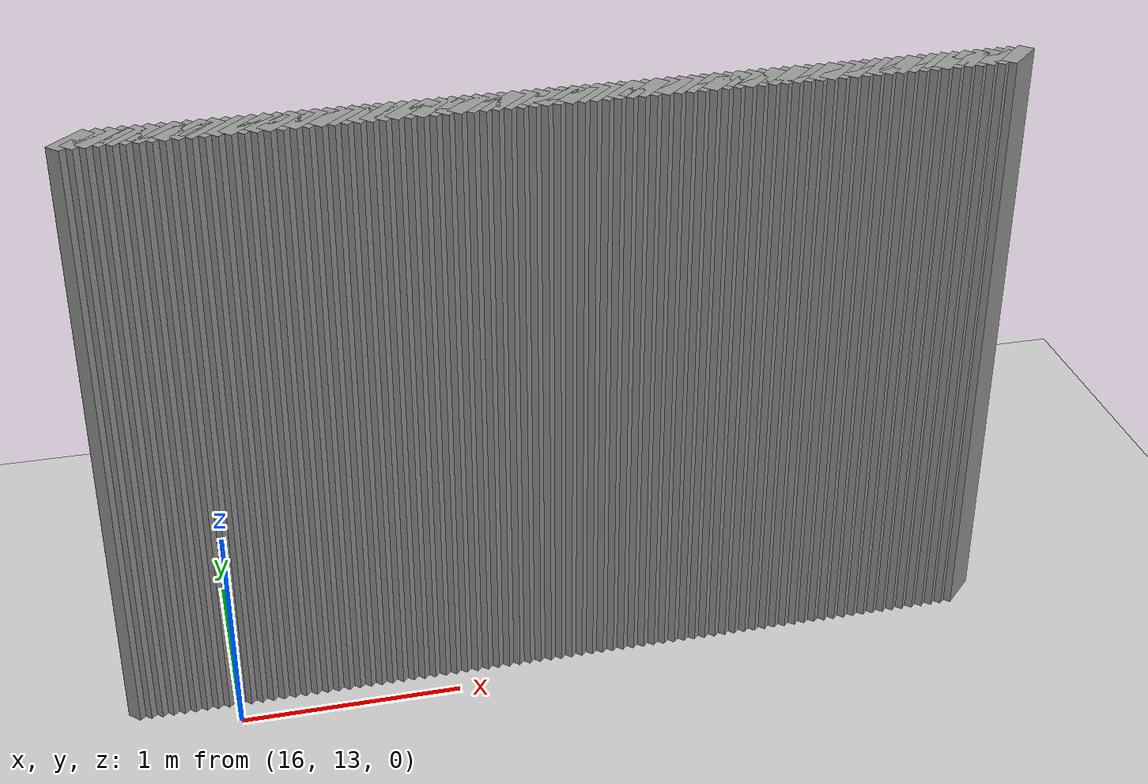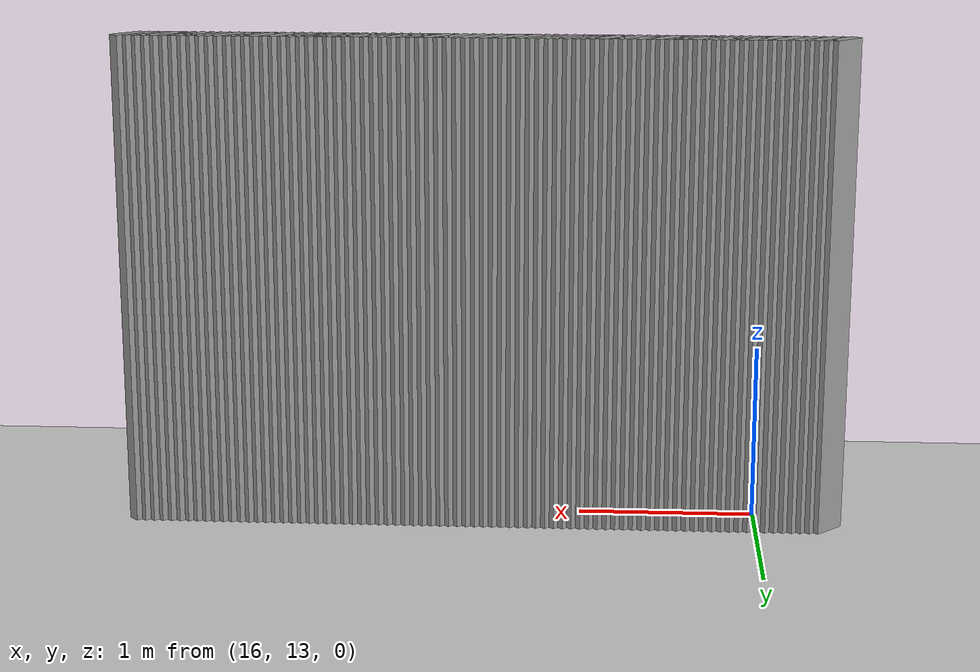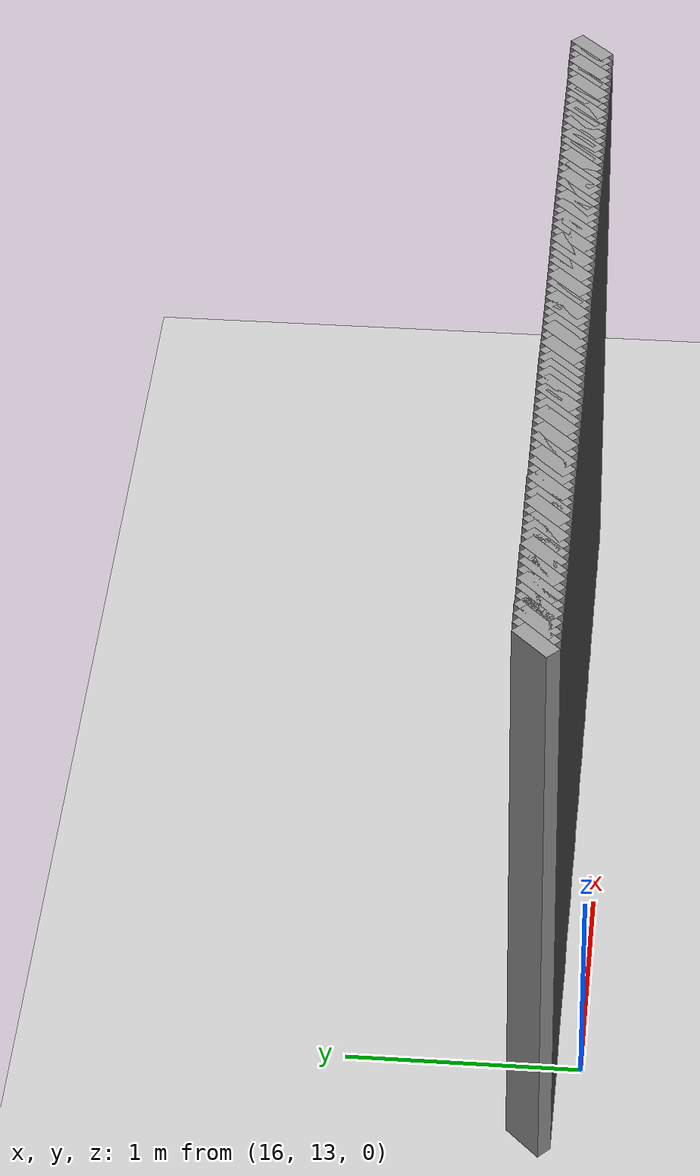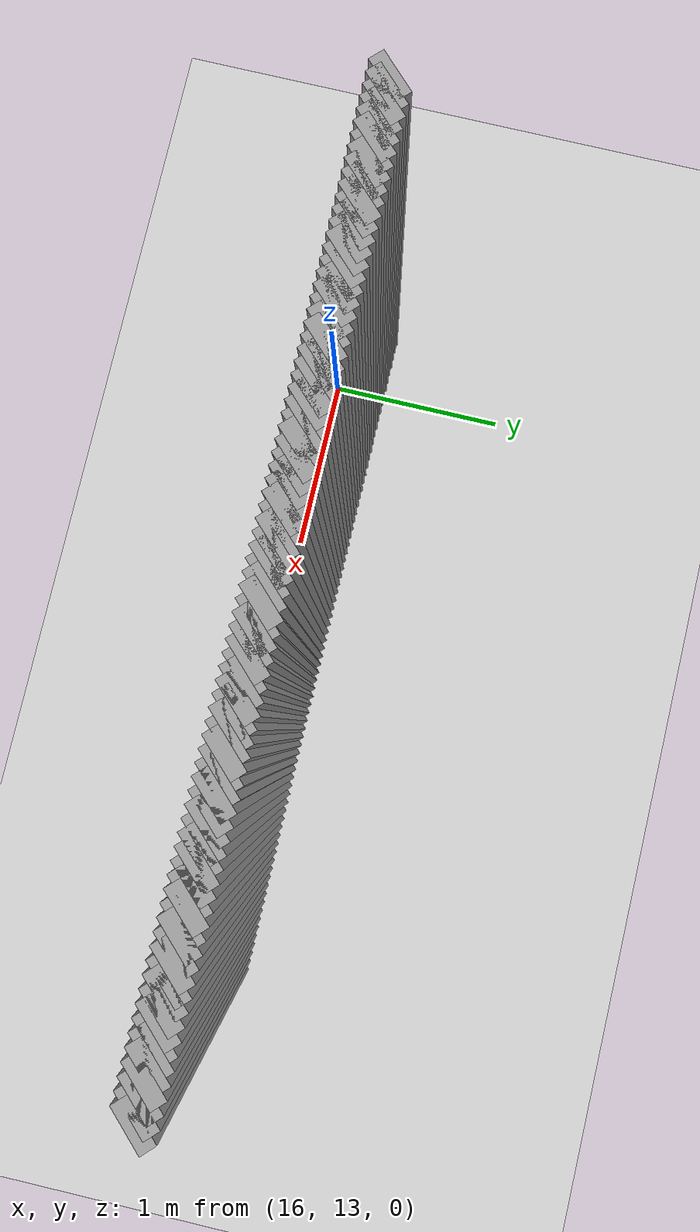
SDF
<sdf version="1.5">
 <world name="default">
  <include><uri>model://ground_plane</uri></include>
  <include><uri>model://sun</uri></include>
  <model name="grey_wall_1970">
   <static>1</static>
   <link name="link">
    <pose>15.6 13.2  1.4 0 0 -0.785398163397</pose>
    <collision name="collision"><geometry><box><size>0.0707106781187 .2  2.8</size></box></geometry></collision>
    <visual name="visual">
     <cast_shadows>0</cast_shadows>
     <geometry><box><size>0.0707106781187 .2  2.8</size></box></geometry>
     <material>
      <script>
       <uri>model://grey_wall/materials/scripts</uri>
       <uri>model://grey_wall/materials/textures</uri>
       <name>vrc/grey_wall</name>
      </script>
     </material>
    </visual>
   </link>
  </model>
  <model name="grey_wall_1971">
   <static>1</static>
   <link name="link">
    <pose>15.65 13.2  1.4 0 0 -0.785398163397</pose>
    <collision name="collision"><geometry><box><size>0.0707106781187 .2  2.8</size></box></geometry></collision>
    <visual name="visual">
     <cast_shadows>0</cast_shadows>
     <geometry><box><size>0.0707106781187 .2  2.8</size></box></geometry>
     <material>
      <script>
       <uri>model://grey_wall/materials/scripts</uri>
       <uri>model://grey_wall/materials/textures</uri>
       <name>vrc/grey_wall</name>
      </script>
     </material>
    </visual>
   </link>
  </model>
  <model name="grey_wall_1972">
   <static>1</static>
   <link name="link">
    <pose>15.7 13.2  1.4 0 0 -0.785398163397</pose>
    <collision name="collision"><geometry><box><size>0.0707106781187 .2  2.8</size></box></geometry></collision>
    <visual name="visual">
     <cast_shadows>0</cast_shadows>
     <geometry><box><size>0.0707106781187 .2  2.8</size></box></geometry>
     <material>
      <script>
       <uri>model://grey_wall/materials/scripts</uri>
       <uri>model://grey_wall/materials/textures</uri>
       <name>vrc/grey_wall</name>
      </script>
     </material>
    </visual>
   </link>
  </model>
  <model name="grey_wall_1973">
   <static>1</static>
   <link name="link">
    <pose>15.75 13.2  1.4 0 0 -0.785398163397</pose>
    <collision name="collision"><geometry><box><size>0.0707106781187 .2  2.8</size></box></geometry></collision>
    <visual name="visual">
     <cast_shadows>0</cast_shadows>
     <geometry><box><size>0.0707106781187 .2  2.8</size></box></geometry>
     <material>
      <script>
       <uri>model://grey_wall/materials/scripts</uri>
       <uri>model://grey_wall/materials/textures</uri>
       <name>vrc/grey_wall</name>
      </script>
     </material>
    </visual>
   </link>
  </model>
  <model name="grey_wall_1974">
   <static>1</static>
   <link name="link">
    <pose>15.8 13.2  1.4 0 0 -0.785398163397</pose>
    <collision name="collision"><geometry><box><size>0.0707106781187 .2  2.8</size></box></geometry></collision>
    <visual name="visual">
     <cast_shadows>0</cast_shadows>
     <geometry><box><size>0.0707106781187 .2  2.8</size></box></geometry>
     <material>
      <script>
       <uri>model://grey_wall/materials/scripts</uri>
       <uri>model://grey_wall/materials/textures</uri>
       <name>vrc/grey_wall</name>
      </script>
     </material>
    </visual>
   </link>
  </model>
  <model name="grey_wall_1975">
   <static>1</static>
   <link name="link">
    <pose>15.85 13.2  1.4 0 0 -0.785398163397</pose>
    <collision name="collision"><geometry><box><size>0.0707106781187 .2  2.8</size></box></geometry></collision>
    <visual name="visual">
     <cast_shadows>0</cast_shadows>
     <geometry><box><size>0.0707106781187 .2  2.8</size></box></geometry>
     <material>
      <script>
       <uri>model://grey_wall/materials/scripts</uri>
       <uri>model://grey_wall/materials/textures</uri>
       <name>vrc/grey_wall</name>
      </script>
     </material>
    </visual>
   </link>
  </model>
  <model name="grey_wall_1976">
   <static>1</static>
   <link name="link">
    <pose>15.9 13.2  1.4 0 0 -0.785398163397</pose>
    <collision name="collision"><geometry><box><size>0.0707106781187 .2  2.8</size></box></geometry></collision>
    <visual name="visual">
     <cast_shadows>0</cast_shadows>
     <geometry><box><size>0.0707106781187 .2  2.8</size></box></geometry>
     <material>
      <script>
       <uri>model://grey_wall/materials/scripts</uri>
       <uri>model://grey_wall/materials/textures</uri>
       <name>vrc/grey_wall</name>
      </script>
     </material>
    </visual>
   </link>
  </model>
  <model name="grey_wall_1977">
   <static>1</static>
   <link name="link">
    <pose>15.95 13.2  1.4 0 0 -0.785398163397</pose>
    <collision name="collision"><geometry><box><size>0.0707106781187 .2  2.8</size></box></geometry></collision>
    <visual name="visual">
     <cast_shadows>0</cast_shadows>
     <geometry><box><size>0.0707106781187 .2  2.8</size></box></geometry>
     <material>
      <script>
       <uri>model://grey_wall/materials/scripts</uri>
       <uri>model://grey_wall/materials/textures</uri>
       <name>vrc/grey_wall</name>
      </script>
     </material>
    </visual>
   </link>
  </model>
  <model name="grey_wall_1978">
   <static>1</static>
   <link name="link">
    <pose>16.0 13.2  1.4 0 0 -0.785398163397</pose>
    <collision name="collision"><geometry><box><size>0.0707106781187 .2  2.8</size></box></geometry></collision>
    <visual name="visual">
     <cast_shadows>0</cast_shadows>
     <geometry><box><size>0.0707106781187 .2  2.8</size></box></geometry>
     <material>
      <script>
       <uri>model://grey_wall/materials/scripts</uri>
       <uri>model://grey_wall/materials/textures</uri>
       <name>vrc/grey_wall</name>
      </script>
     </material>
    </visual>
   </link>
  </model>
  <model name="grey_wall_1979">
   <static>1</static>
   <link name="link">
    <pose>16.05 13.2  1.4 0 0 -0.785398163397</pose>
    <collision name="collision"><geometry><box><size>0.0707106781187 .2  2.8</size></box></geometry></collision>
    <visual name="visual">
     <cast_shadows>0</cast_shadows>
     <geometry><box><size>0.0707106781187 .2  2.8</size></box></geometry>
     <material>
      <script>
       <uri>model://grey_wall/materials/scripts</uri>
       <uri>model://grey_wall/materials/textures</uri>
       <name>vrc/grey_wall</name>
      </script>
     </material>
    </visual>
   </link>
  </model>
  <model name="grey_wall_1980">
   <static>1</static>
   <link name="link">
    <pose>16.1 13.2  1.4 0 0 -0.785398163397</pose>
    <collision name="collision"><geometry><box><size>0.0707106781187 .2  2.8</size></box></geometry></collision>
    <visual name="visual">
     <cast_shadows>0</cast_shadows>
     <geometry><box><size>0.0707106781187 .2  2.8</size></box></geometry>
     <material>
      <script>
       <uri>model://grey_wall/materials/scripts</uri>
       <uri>model://grey_wall/materials/textures</uri>
       <name>vrc/grey_wall</name>
      </script>
     </material>
    </visual>
   </link>
  </model>
  <model name="grey_wall_1981">
   <static>1</static>
   <link name="link">
    <pose>16.15 13.2  1.4 0 0 -0.785398163397</pose>
    <collision name="collision"><geometry><box><size>0.0707106781187 .2  2.8</size></box></geometry></collision>
    <visual name="visual">
     <cast_shadows>0</cast_shadows>
     <geometry><box><size>0.0707106781187 .2  2.8</size></box></geometry>
     <material>
      <script>
       <uri>model://grey_wall/materials/scripts</uri>
       <uri>model://grey_wall/materials/textures</uri>
       <name>vrc/grey_wall</name>
      </script>
     </material>
    </visual>
   </link>
  </model>
  <model name="grey_wall_1982">
   <static>1</static>
   <link name="link">
    <pose>16.2 13.2  1.4 0 0 -0.785398163397</pose>
    <collision name="collision"><geometry><box><size>0.0707106781187 .2  2.8</size></box></geometry></collision>
    <visual name="visual">
     <cast_shadows>0</cast_shadows>
     <geometry><box><size>0.0707106781187 .2  2.8</size></box></geometry>
     <material>
      <script>
       <uri>model://grey_wall/materials/scripts</uri>
       <uri>model://grey_wall/materials/textures</uri>
       <name>vrc/grey_wall</name>
      </script>
     </material>
    </visual>
   </link>
  </model>
  <model name="grey_wall_1983">
   <static>1</static>
   <link name="link">
    <pose>16.25 13.2  1.4 0 0 -0.785398163397</pose>
    <collision name="collision"><geometry><box><size>0.0707106781187 .2  2.8</size></box></geometry></collision>
    <visual name="visual">
     <cast_shadows>0</cast_shadows>
     <geometry><box><size>0.0707106781187 .2  2.8</size></box></geometry>
     <material>
      <script>
       <uri>model://grey_wall/materials/scripts</uri>
       <uri>model://grey_wall/materials/textures</uri>
       <name>vrc/grey_wall</name>
      </script>
     </material>
    </visual>
   </link>
  </model>
  <model name="grey_wall_1984">
   <static>1</static>
   <link name="link">
    <pose>16.3 13.2  1.4 0 0 -0.785398163397</pose>
    <collision name="collision"><geometry><box><size>0.0707106781187 .2  2.8</size></box></geometry></collision>
    <visual name="visual">
     <cast_shadows>0</cast_shadows>
     <geometry><box><size>0.0707106781187 .2  2.8</size></box></geometry>
     <material>
      <script>
       <uri>model://grey_wall/materials/scripts</uri>
       <uri>model://grey_wall/materials/textures</uri>
       <name>vrc/grey_wall</name>
      </script>
     </material>
    </visual>
   </link>
  </model>
  <model name="grey_wall_1985">
   <static>1</static>
   <link name="link">
    <pose>16.35 13.2  1.4 0 0 -0.785398163397</pose>
    <collision name="collision"><geometry><box><size>0.0707106781187 .2  2.8</size></box></geometry></collision>
    <visual name="visual">
     <cast_shadows>0</cast_shadows>
     <geometry><box><size>0.0707106781187 .2  2.8</size></box></geometry>
     <material>
      <script>
       <uri>model://grey_wall/materials/scripts</uri>
       <uri>model://grey_wall/materials/textures</uri>
       <name>vrc/grey_wall</name>
      </script>
     </material>
    </visual>
   </link>
  </model>
  <model name="grey_wall_1986">
   <static>1</static>
   <link name="link">
    <pose>16.4 13.2  1.4 0 0 -0.785398163397</pose>
    <collision name="collision"><geometry><box><size>0.0707106781187 .2  2.8</size></box></geometry></collision>
    <visual name="visual">
     <cast_shadows>0</cast_shadows>
     <geometry><box><size>0.0707106781187 .2  2.8</size></box></geometry>
     <material>
      <script>
       <uri>model://grey_wall/materials/scripts</uri>
       <uri>model://grey_wall/materials/textures</uri>
       <name>vrc/grey_wall</name>
      </script>
     </material>
    </visual>
   </link>
  </model>
  <model name="grey_wall_1987">
   <static>1</static>
   <link name="link">
    <pose>16.45 13.2  1.4 0 0 -0.785398163397</pose>
    <collision name="collision"><geometry><box><size>0.0707106781187 .2  2.8</size></box></geometry></collision>
    <visual name="visual">
     <cast_shadows>0</cast_shadows>
     <geometry><box><size>0.0707106781187 .2  2.8</size></box></geometry>
     <material>
      <script>
       <uri>model://grey_wall/materials/scripts</uri>
       <uri>model://grey_wall/materials/textures</uri>
       <name>vrc/grey_wall</name>
      </script>
     </material>
    </visual>
   </link>
  </model>
  <model name="grey_wall_1988">
   <static>1</static>
   <link name="link">
    <pose>16.5 13.2  1.4 0 0 -0.785398163397</pose>
    <collision name="collision"><geometry><box><size>0.0707106781187 .2  2.8</size></box></geometry></collision>
    <visual name="visual">
     <cast_shadows>0</cast_shadows>
     <geometry><box><size>0.0707106781187 .2  2.8</size></box></geometry>
     <material>
      <script>
       <uri>model://grey_wall/materials/scripts</uri>
       <uri>model://grey_wall/materials/textures</uri>
       <name>vrc/grey_wall</name>
      </script>
     </material>
    </visual>
   </link>
  </model>
  <model name="grey_wall_1989">
   <static>1</static>
   <link name="link">
    <pose>16.55 13.2  1.4 0 0 -0.785398163397</pose>
    <collision name="collision"><geometry><box><size>0.0707106781187 .2  2.8</size></box></geometry></collision>
    <visual name="visual">
     <cast_shadows>0</cast_shadows>
     <geometry><box><size>0.0707106781187 .2  2.8</size></box></geometry>
     <material>
      <script>
       <uri>model://grey_wall/materials/scripts</uri>
       <uri>model://grey_wall/materials/textures</uri>
       <name>vrc/grey_wall</name>
      </script>
     </material>
    </visual>
   </link>
  </model>
  <model name="grey_wall_1990">
   <static>1</static>
   <link name="link">
    <pose>16.6 13.2  1.4 0 0 -0.785398163397</pose>
    <collision name="collision"><geometry><box><size>0.0707106781187 .2  2.8</size></box></geometry></collision>
    <visual name="visual">
     <cast_shadows>0</cast_shadows>
     <geometry><box><size>0.0707106781187 .2  2.8</size></box></geometry>
     <material>
      <script>
       <uri>model://grey_wall/materials/scripts</uri>
       <uri>model://grey_wall/materials/textures</uri>
       <name>vrc/grey_wall</name>
      </script>
     </material>
    </visual>
   </link>
  </model>
  <model name="grey_wall_1991">
   <static>1</static>
   <link name="link">
    <pose>16.65 13.2  1.4 0 0 -0.785398163397</pose>
    <collision name="collision"><geometry><box><size>0.0707106781187 .2  2.8</size></box></geometry></collision>
    <visual name="visual">
     <cast_shadows>0</cast_shadows>
     <geometry><box><size>0.0707106781187 .2  2.8</size></box></geometry>
     <material>
      <script>
       <uri>model://grey_wall/materials/scripts</uri>
       <uri>model://grey_wall/materials/textures</uri>
       <name>vrc/grey_wall</name>
      </script>
     </material>
    </visual>
   </link>
  </model>
  <model name="grey_wall_1992">
   <static>1</static>
   <link name="link">
    <pose>16.7 13.2  1.4 0 0 -0.785398163397</pose>
    <collision name="collision"><geometry><box><size>0.0707106781187 .2  2.8</size></box></geometry></collision>
    <visual name="visual">
     <cast_shadows>0</cast_shadows>
     <geometry><box><size>0.0707106781187 .2  2.8</size></box></geometry>
     <material>
      <script>
       <uri>model://grey_wall/materials/scripts</uri>
       <uri>model://grey_wall/materials/textures</uri>
       <name>vrc/grey_wall</name>
      </script>
     </material>
    </visual>
   </link>
  </model>
  <model name="grey_wall_1993">
   <static>1</static>
   <link name="link">
    <pose>16.75 13.2  1.4 0 0 -0.785398163397</pose>
    <collision name="collision"><geometry><box><size>0.0707106781187 .2  2.8</size></box></geometry></collision>
    <visual name="visual">
     <cast_shadows>0</cast_shadows>
     <geometry><box><size>0.0707106781187 .2  2.8</size></box></geometry>
     <material>
      <script>
       <uri>model://grey_wall/materials/scripts</uri>
       <uri>model://grey_wall/materials/textures</uri>
       <name>vrc/grey_wall</name>
      </script>
     </material>
    </visual>
   </link>
  </model>
  <model name="grey_wall_1994">
   <static>1</static>
   <link name="link">
    <pose>16.8 13.2  1.4 0 0 -0.785398163397</pose>
    <collision name="collision"><geometry><box><size>0.0707106781187 .2  2.8</size></box></geometry></collision>
    <visual name="visual">
     <cast_shadows>0</cast_shadows>
     <geometry><box><size>0.0707106781187 .2  2.8</size></box></geometry>
     <material>
      <script>
       <uri>model://grey_wall/materials/scripts</uri>
       <uri>model://grey_wall/materials/textures</uri>
       <name>vrc/grey_wall</name>
      </script>
     </material>
    </visual>
   </link>
  </model>
  <model name="grey_wall_1995">
   <static>1</static>
   <link name="link">
    <pose>16.85 13.2  1.4 0 0 -0.785398163397</pose>
    <collision name="collision"><geometry><box><size>0.0707106781187 .2  2.8</size></box></geometry></collision>
    <visual name="visual">
     <cast_shadows>0</cast_shadows>
     <geometry><box><size>0.0707106781187 .2  2.8</size></box></geometry>
     <material>
      <script>
       <uri>model://grey_wall/materials/scripts</uri>
       <uri>model://grey_wall/materials/textures</uri>
       <name>vrc/grey_wall</name>
      </script>
     </material>
    </visual>
   </link>
  </model>
  <model name="grey_wall_1996">
   <static>1</static>
   <link name="link">
    <pose>16.9 13.2  1.4 0 0 -0.785398163397</pose>
    <collision name="collision"><geometry><box><size>0.0707106781187 .2  2.8</size></box></geometry></collision>
    <visual name="visual">
     <cast_shadows>0</cast_shadows>
     <geometry><box><size>0.0707106781187 .2  2.8</size></box></geometry>
     <material>
      <script>
       <uri>model://grey_wall/materials/scripts</uri>
       <uri>model://grey_wall/materials/textures</uri>
       <name>vrc/grey_wall</name>
      </script>
     </material>
    </visual>
   </link>
  </model>
  <model name="grey_wall_1997">
   <static>1</static>
   <link name="link">
    <pose>16.95 13.2  1.4 0 0 -0.785398163397</pose>
    <collision name="collision"><geometry><box><size>0.0707106781187 .2  2.8</size></box></geometry></collision>
    <visual name="visual">
     <cast_shadows>0</cast_shadows>
     <geometry><box><size>0.0707106781187 .2  2.8</size></box></geometry>
     <material>
      <script>
       <uri>model://grey_wall/materials/scripts</uri>
       <uri>model://grey_wall/materials/textures</uri>
       <name>vrc/grey_wall</name>
      </script>
     </material>
    </visual>
   </link>
  </model>
  <model name="grey_wall_1998">
   <static>1</static>
   <link name="link">
    <pose>17.0 13.2  1.4 0 0 -0.785398163397</pose>
    <collision name="collision"><geometry><box><size>0.0707106781187 .2  2.8</size></box></geometry></collision>
    <visual name="visual">
     <cast_shadows>0</cast_shadows>
     <geometry><box><size>0.0707106781187 .2  2.8</size></box></geometry>
     <material>
      <script>
       <uri>model://grey_wall/materials/scripts</uri>
       <uri>model://grey_wall/materials/textures</uri>
       <name>vrc/grey_wall</name>
      </script>
     </material>
    </visual>
   </link>
  </model>
  <model name="grey_wall_1999">
   <static>1</static>
   <link name="link">
    <pose>17.05 13.2  1.4 0 0 -0.785398163397</pose>
    <collision name="collision"><geometry><box><size>0.0707106781187 .2  2.8</size></box></geometry></collision>
    <visual name="visual">
     <cast_shadows>0</cast_shadows>
     <geometry><box><size>0.0707106781187 .2  2.8</size></box></geometry>
     <material>
      <script>
       <uri>model://grey_wall/materials/scripts</uri>
       <uri>model://grey_wall/materials/textures</uri>
       <name>vrc/grey_wall</name>
      </script>
     </material>
    </visual>
   </link>
  </model>
  <model name="grey_wall_2000">
   <static>1</static>
   <link name="link">
    <pose>17.1 13.2  1.4 0 0 -0.785398163397</pose>
    <collision name="collision"><geometry><box><size>0.0707106781187 .2  2.8</size></box></geometry></collision>
    <visual name="visual">
     <cast_shadows>0</cast_shadows>
     <geometry><box><size>0.0707106781187 .2  2.8</size></box></geometry>
     <material>
      <script>
       <uri>model://grey_wall/materials/scripts</uri>
       <uri>model://grey_wall/materials/textures</uri>
       <name>vrc/grey_wall</name>
      </script>
     </material>
    </visual>
   </link>
  </model>
  <model name="grey_wall_2001">
   <static>1</static>
   <link name="link">
    <pose>17.15 13.2  1.4 0 0 -0.785398163397</pose>
    <collision name="collision"><geometry><box><size>0.0707106781187 .2  2.8</size></box></geometry></collision>
    <visual name="visual">
     <cast_shadows>0</cast_shadows>
     <geometry><box><size>0.0707106781187 .2  2.8</size></box></geometry>
     <material>
      <script>
       <uri>model://grey_wall/materials/scripts</uri>
       <uri>model://grey_wall/materials/textures</uri>
       <name>vrc/grey_wall</name>
      </script>
     </material>
    </visual>
   </link>
  </model>
  <model name="grey_wall_2002">
   <static>1</static>
   <link name="link">
    <pose>17.2 13.2  1.4 0 0 -0.785398163397</pose>
    <collision name="collision"><geometry><box><size>0.0707106781187 .2  2.8</size></box></geometry></collision>
    <visual name="visual">
     <cast_shadows>0</cast_shadows>
     <geometry><box><size>0.0707106781187 .2  2.8</size></box></geometry>
     <material>
      <script>
       <uri>model://grey_wall/materials/scripts</uri>
       <uri>model://grey_wall/materials/textures</uri>
       <name>vrc/grey_wall</name>
      </script>
     </material>
    </visual>
   </link>
  </model>
  <model name="grey_wall_2003">
   <static>1</static>
   <link name="link">
    <pose>17.25 13.2  1.4 0 0 -0.785398163397</pose>
    <collision name="collision"><geometry><box><size>0.0707106781187 .2  2.8</size></box></geometry></collision>
    <visual name="visual">
     <cast_shadows>0</cast_shadows>
     <geometry><box><size>0.0707106781187 .2  2.8</size></box></geometry>
     <material>
      <script>
       <uri>model://grey_wall/materials/scripts</uri>
       <uri>model://grey_wall/materials/textures</uri>
       <name>vrc/grey_wall</name>
      </script>
     </material>
    </visual>
   </link>
  </model>
  <model name="grey_wall_2004">
   <static>1</static>
   <link name="link">
    <pose>17.3 13.2  1.4 0 0 -0.785398163397</pose>
    <collision name="collision"><geometry><box><size>0.0707106781187 .2  2.8</size></box></geometry></collision>
    <visual name="visual">
     <cast_shadows>0</cast_shadows>
     <geometry><box><size>0.0707106781187 .2  2.8</size></box></geometry>
     <material>
      <script>
       <uri>model://grey_wall/materials/scripts</uri>
       <uri>model://grey_wall/materials/textures</uri>
       <name>vrc/grey_wall</name>
      </script>
     </material>
    </visual>
   </link>
  </model>
  <model name="grey_wall_2005">
   <static>1</static>
   <link name="link">
    <pose>17.35 13.2  1.4 0 0 -0.785398163397</pose>
    <collision name="collision"><geometry><box><size>0.0707106781187 .2  2.8</size></box></geometry></collision>
    <visual name="visual">
     <cast_shadows>0</cast_shadows>
     <geometry><box><size>0.0707106781187 .2  2.8</size></box></geometry>
     <material>
      <script>
       <uri>model://grey_wall/materials/scripts</uri>
       <uri>model://grey_wall/materials/textures</uri>
       <name>vrc/grey_wall</name>
      </script>
     </material>
    </visual>
   </link>
  </model>
  <model name="grey_wall_2006">
   <static>1</static>
   <link name="link">
    <pose>17.4 13.2  1.4 0 0 -0.785398163397</pose>
    <collision name="collision"><geometry><box><size>0.0707106781187 .2  2.8</size></box></geometry></collision>
    <visual name="visual">
     <cast_shadows>0</cast_shadows>
     <geometry><box><size>0.0707106781187 .2  2.8</size></box></geometry>
     <material>
      <script>
       <uri>model://grey_wall/materials/scripts</uri>
       <uri>model://grey_wall/materials/textures</uri>
       <name>vrc/grey_wall</name>
      </script>
     </material>
    </visual>
   </link>
  </model>
  <model name="grey_wall_2007">
   <static>1</static>
   <link name="link">
    <pose>17.45 13.2  1.4 0 0 -0.785398163397</pose>
    <collision name="collision"><geometry><box><size>0.0707106781187 .2  2.8</size></box></geometry></collision>
    <visual name="visual">
     <cast_shadows>0</cast_shadows>
     <geometry><box><size>0.0707106781187 .2  2.8</size></box></geometry>
     <material>
      <script>
       <uri>model://grey_wall/materials/scripts</uri>
       <uri>model://grey_wall/materials/textures</uri>
       <name>vrc/grey_wall</name>
      </script>
     </material>
    </visual>
   </link>
  </model>
  <model name="grey_wall_2008">
   <static>1</static>
   <link name="link">
    <pose>17.5 13.2  1.4 0 0 -0.785398163397</pose>
    <collision name="collision"><geometry><box><size>0.0707106781187 .2  2.8</size></box></geometry></collision>
    <visual name="visual">
     <cast_shadows>0</cast_shadows>
     <geometry><box><size>0.0707106781187 .2  2.8</size></box></geometry>
     <material>
      <script>
       <uri>model://grey_wall/materials/scripts</uri>
       <uri>model://grey_wall/materials/textures</uri>
       <name>vrc/grey_wall</name>
      </script>
     </material>
    </visual>
   </link>
  </model>
  <model name="grey_wall_2009">
   <static>1</static>
   <link name="link">
    <pose>17.55 13.2  1.4 0 0 -0.785398163397</pose>
    <collision name="collision"><geometry><box><size>0.0707106781187 .2  2.8</size></box></geometry></collision>
    <visual name="visual">
     <cast_shadows>0</cast_shadows>
     <geometry><box><size>0.0707106781187 .2  2.8</size></box></geometry>
     <material>
      <script>
       <uri>model://grey_wall/materials/scripts</uri>
       <uri>model://grey_wall/materials/textures</uri>
       <name>vrc/grey_wall</name>
      </script>
     </material>
    </visual>
   </link>
  </model>
  <model name="grey_wall_2010">
   <static>1</static>
   <link name="link">
    <pose>17.6 13.2  1.4 0 0 -0.785398163397</pose>
    <collision name="collision"><geometry><box><size>0.0707106781187 .2  2.8</size></box></geometry></collision>
    <visual name="visual">
     <cast_shadows>0</cast_shadows>
     <geometry><box><size>0.0707106781187 .2  2.8</size></box></geometry>
     <material>
      <script>
       <uri>model://grey_wall/materials/scripts</uri>
       <uri>model://grey_wall/materials/textures</uri>
       <name>vrc/grey_wall</name>
      </script>
     </material>
    </visual>
   </link>
  </model>
  <model name="grey_wall_2011">
   <static>1</static>
   <link name="link">
    <pose>17.65 13.2  1.4 0 0 -0.785398163397</pose>
    <collision name="collision"><geometry><box><size>0.0707106781187 .2  2.8</size></box></geometry></collision>
    <visual name="visual">
     <cast_shadows>0</cast_shadows>
     <geometry><box><size>0.0707106781187 .2  2.8</size></box></geometry>
     <material>
      <script>
       <uri>model://grey_wall/materials/scripts</uri>
       <uri>model://grey_wall/materials/textures</uri>
       <name>vrc/grey_wall</name>
      </script>
     </material>
    </visual>
   </link>
  </model>
  <model name="grey_wall_2012">
   <static>1</static>
   <link name="link">
    <pose>17.7 13.2  1.4 0 0 -0.785398163397</pose>
    <collision name="collision"><geometry><box><size>0.0707106781187 .2  2.8</size></box></geometry></collision>
    <visual name="visual">
     <cast_shadows>0</cast_shadows>
     <geometry><box><size>0.0707106781187 .2  2.8</size></box></geometry>
     <material>
      <script>
       <uri>model://grey_wall/materials/scripts</uri>
       <uri>model://grey_wall/materials/textures</uri>
       <name>vrc/grey_wall</name>
      </script>
     </material>
    </visual>
   </link>
  </model>
  <model name="grey_wall_2013">
   <static>1</static>
   <link name="link">
    <pose>17.75 13.2  1.4 0 0 -0.785398163397</pose>
    <collision name="collision"><geometry><box><size>0.0707106781187 .2  2.8</size></box></geometry></collision>
    <visual name="visual">
     <cast_shadows>0</cast_shadows>
     <geometry><box><size>0.0707106781187 .2  2.8</size></box></geometry>
     <material>
      <script>
       <uri>model://grey_wall/materials/scripts</uri>
       <uri>model://grey_wall/materials/textures</uri>
       <name>vrc/grey_wall</name>
      </script>
     </material>
    </visual>
   </link>
  </model>
  <model name="grey_wall_2014">
   <static>1</static>
   <link name="link">
    <pose>17.8 13.2  1.4 0 0 -0.785398163397</pose>
    <collision name="collision"><geometry><box><size>0.0707106781187 .2  2.8</size></box></geometry></collision>
    <visual name="visual">
     <cast_shadows>0</cast_shadows>
     <geometry><box><size>0.0707106781187 .2  2.8</size></box></geometry>
     <material>
      <script>
       <uri>model://grey_wall/materials/scripts</uri>
       <uri>model://grey_wall/materials/textures</uri>
       <name>vrc/grey_wall</name>
      </script>
     </material>
    </visual>
   </link>
  </model>
  <model name="grey_wall_2015">
   <static>1</static>
   <link name="link">
    <pose>17.85 13.2  1.4 0 0 -0.785398163397</pose>
    <collision name="collision"><geometry><box><size>0.0707106781187 .2  2.8</size></box></geometry></collision>
    <visual name="visual">
     <cast_shadows>0</cast_shadows>
     <geometry><box><size>0.0707106781187 .2  2.8</size></box></geometry>
     <material>
      <script>
       <uri>model://grey_wall/materials/scripts</uri>
       <uri>model://grey_wall/materials/textures</uri>
       <name>vrc/grey_wall</name>
      </script>
     </material>
    </visual>
   </link>
  </model>
  <model name="grey_wall_2016">
   <static>1</static>
   <link name="link">
    <pose>17.9 13.2  1.4 0 0 -0.785398163397</pose>
    <collision name="collision"><geometry><box><size>0.0707106781187 .2  2.8</size></box></geometry></collision>
    <visual name="visual">
     <cast_shadows>0</cast_shadows>
     <geometry><box><size>0.0707106781187 .2  2.8</size></box></geometry>
     <material>
      <script>
       <uri>model://grey_wall/materials/scripts</uri>
       <uri>model://grey_wall/materials/textures</uri>
       <name>vrc/grey_wall</name>
      </script>
     </material>
    </visual>
   </link>
  </model>
  <model name="grey_wall_2017">
   <static>1</static>
   <link name="link">
    <pose>17.95 13.2  1.4 0 0 -0.785398163397</pose>
    <collision name="collision"><geometry><box><size>0.0707106781187 .2  2.8</size></box></geometry></collision>
    <visual name="visual">
     <cast_shadows>0</cast_shadows>
     <geometry><box><size>0.0707106781187 .2  2.8</size></box></geometry>
     <material>
      <script>
       <uri>model://grey_wall/materials/scripts</uri>
       <uri>model://grey_wall/materials/textures</uri>
       <name>vrc/grey_wall</name>
      </script>
     </material>
    </visual>
   </link>
  </model>
  <model name="grey_wall_2018">
   <static>1</static>
   <link name="link">
    <pose>18.0 13.2  1.4 0 0 -0.785398163397</pose>
    <collision name="collision"><geometry><box><size>0.0707106781187 .2  2.8</size></box></geometry></collision>
    <visual name="visual">
     <cast_shadows>0</cast_shadows>
     <geometry><box><size>0.0707106781187 .2  2.8</size></box></geometry>
     <material>
      <script>
       <uri>model://grey_wall/materials/scripts</uri>
       <uri>model://grey_wall/materials/textures</uri>
       <name>vrc/grey_wall</name>
      </script>
     </material>
    </visual>
   </link>
  </model>
  <model name="grey_wall_2019">
   <static>1</static>
   <link name="link">
    <pose>18.05 13.2  1.4 0 0 -0.785398163397</pose>
    <collision name="collision"><geometry><box><size>0.0707106781187 .2  2.8</size></box></geometry></collision>
    <visual name="visual">
     <cast_shadows>0</cast_shadows>
     <geometry><box><size>0.0707106781187 .2  2.8</size></box></geometry>
     <material>
      <script>
       <uri>model://grey_wall/materials/scripts</uri>
       <uri>model://grey_wall/materials/textures</uri>
       <name>vrc/grey_wall</name>
      </script>
     </material>
    </visual>
   </link>
  </model>
  <model name="grey_wall_2020">
   <static>1</static>
   <link name="link">
    <pose>18.1 13.2  1.4 0 0 -0.785398163397</pose>
    <collision name="collision"><geometry><box><size>0.0707106781187 .2  2.8</size></box></geometry></collision>
    <visual name="visual">
     <cast_shadows>0</cast_shadows>
     <geometry><box><size>0.0707106781187 .2  2.8</size></box></geometry>
     <material>
      <script>
       <uri>model://grey_wall/materials/scripts</uri>
       <uri>model://grey_wall/materials/textures</uri>
       <name>vrc/grey_wall</name>
      </script>
     </material>
    </visual>
   </link>
  </model>
  <model name="grey_wall_2021">
   <static>1</static>
   <link name="link">
    <pose>18.15 13.2  1.4 0 0 -0.785398163397</pose>
    <collision name="collision"><geometry><box><size>0.0707106781187 .2  2.8</size></box></geometry></collision>
    <visual name="visual">
     <cast_shadows>0</cast_shadows>
     <geometry><box><size>0.0707106781187 .2  2.8</size></box></geometry>
     <material>
      <script>
       <uri>model://grey_wall/materials/scripts</uri>
       <uri>model://grey_wall/materials/textures</uri>
       <name>vrc/grey_wall</name>
      </script>
     </material>
    </visual>
   </link>
  </model>
  <model name="grey_wall_2022">
   <static>1</static>
   <link name="link">
    <pose>18.2 13.2  1.4 0 0 -0.785398163397</pose>
    <collision name="collision"><geometry><box><size>0.0707106781187 .2  2.8</size></box></geometry></collision>
    <visual name="visual">
     <cast_shadows>0</cast_shadows>
     <geometry><box><size>0.0707106781187 .2  2.8</size></box></geometry>
     <material>
      <script>
       <uri>model://grey_wall/materials/scripts</uri>
       <uri>model://grey_wall/materials/textures</uri>
       <name>vrc/grey_wall</name>
      </script>
     </material>
    </visual>
   </link>
  </model>
  <model name="grey_wall_2023">
   <static>1</static>
   <link name="link">
    <pose>18.25 13.2  1.4 0 0 -0.785398163397</pose>
    <collision name="collision"><geometry><box><size>0.0707106781187 .2  2.8</size></box></geometry></collision>
    <visual name="visual">
     <cast_shadows>0</cast_shadows>
     <geometry><box><size>0.0707106781187 .2  2.8</size></box></geometry>
     <material>
      <script>
       <uri>model://grey_wall/materials/scripts</uri>
       <uri>model://grey_wall/materials/textures</uri>
       <name>vrc/grey_wall</name>
      </script>
     </material>
    </visual>
   </link>
  </model>
  <model name="grey_wall_2024">
   <static>1</static>
   <link name="link">
    <pose>18.3 13.2  1.4 0 0 -0.785398163397</pose>
    <collision name="collision"><geometry><box><size>0.0707106781187 .2  2.8</size></box></geometry></collision>
    <visual name="visual">
     <cast_shadows>0</cast_shadows>
     <geometry><box><size>0.0707106781187 .2  2.8</size></box></geometry>
     <material>
      <script>
       <uri>model://grey_wall/materials/scripts</uri>
       <uri>model://grey_wall/materials/textures</uri>
       <name>vrc/grey_wall</name>
      </script>
     </material>
    </visual>
   </link>
  </model>
  <model name="grey_wall_2025">
   <static>1</static>
   <link name="link">
    <pose>18.35 13.2  1.4 0 0 -0.785398163397</pose>
    <collision name="collision"><geometry><box><size>0.0707106781187 .2  2.8</size></box></geometry></collision>
    <visual name="visual">
     <cast_shadows>0</cast_shadows>
     <geometry><box><size>0.0707106781187 .2  2.8</size></box></geometry>
     <material>
      <script>
       <uri>model://grey_wall/materials/scripts</uri>
       <uri>model://grey_wall/materials/textures</uri>
       <name>vrc/grey_wall</name>
      </script>
     </material>
    </visual>
   </link>
  </model>
  <model name="grey_wall_2026">
   <static>1</static>
   <link name="link">
    <pose>18.4 13.2  1.4 0 0 -0.785398163397</pose>
    <collision name="collision"><geometry><box><size>0.0707106781187 .2  2.8</size></box></geometry></collision>
    <visual name="visual">
     <cast_shadows>0</cast_shadows>
     <geometry><box><size>0.0707106781187 .2  2.8</size></box></geometry>
     <material>
      <script>
       <uri>model://grey_wall/materials/scripts</uri>
       <uri>model://grey_wall/materials/textures</uri>
       <name>vrc/grey_wall</name>
      </script>
     </material>
    </visual>
   </link>
  </model>
  <model name="grey_wall_2027">
   <static>1</static>
   <link name="link">
    <pose>18.45 13.2  1.4 0 0 -0.785398163397</pose>
    <collision name="collision"><geometry><box><size>0.0707106781187 .2  2.8</size></box></geometry></collision>
    <visual name="visual">
     <cast_shadows>0</cast_shadows>
     <geometry><box><size>0.0707106781187 .2  2.8</size></box></geometry>
     <material>
      <script>
       <uri>model://grey_wall/materials/scripts</uri>
       <uri>model://grey_wall/materials/textures</uri>
       <name>vrc/grey_wall</name>
      </script>
     </material>
    </visual>
   </link>
  </model>
  <model name="grey_wall_2028">
   <static>1</static>
   <link name="link">
    <pose>18.5 13.2  1.4 0 0 -0.785398163397</pose>
    <collision name="collision"><geometry><box><size>0.0707106781187 .2  2.8</size></box></geometry></collision>
    <visual name="visual">
     <cast_shadows>0</cast_shadows>
     <geometry><box><size>0.0707106781187 .2  2.8</size></box></geometry>
     <material>
      <script>
       <uri>model://grey_wall/materials/scripts</uri>
       <uri>model://grey_wall/materials/textures</uri>
       <name>vrc/grey_wall</name>
      </script>
     </material>
    </visual>
   </link>
  </model>
  <model name="grey_wall_2029">
   <static>1</static>
   <link name="link">
    <pose>18.55 13.2  1.4 0 0 -0.785398163397</pose>
    <collision name="collision"><geometry><box><size>0.0707106781187 .2  2.8</size></box></geometry></collision>
    <visual name="visual">
     <cast_shadows>0</cast_shadows>
     <geometry><box><size>0.0707106781187 .2  2.8</size></box></geometry>
     <material>
      <script>
       <uri>model://grey_wall/materials/scripts</uri>
       <uri>model://grey_wall/materials/textures</uri>
       <name>vrc/grey_wall</name>
      </script>
     </material>
    </visual>
   </link>
  </model>
  <model name="grey_wall_2030">
   <static>1</static>
   <link name="link">
    <pose>18.6 13.2  1.4 0 0 -0.785398163397</pose>
    <collision name="collision"><geometry><box><size>0.0707106781187 .2  2.8</size></box></geometry></collision>
    <visual name="visual">
     <cast_shadows>0</cast_shadows>
     <geometry><box><size>0.0707106781187 .2  2.8</size></box></geometry>
     <material>
      <script>
       <uri>model://grey_wall/materials/scripts</uri>
       <uri>model://grey_wall/materials/textures</uri>
       <name>vrc/grey_wall</name>
      </script>
     </material>
    </visual>
   </link>
  </model>
  <model name="grey_wall_2031">
   <static>1</static>
   <link name="link">
    <pose>18.65 13.2  1.4 0 0 -0.785398163397</pose>
    <collision name="collision"><geometry><box><size>0.0707106781187 .2  2.8</size></box></geometry></collision>
    <visual name="visual">
     <cast_shadows>0</cast_shadows>
     <geometry><box><size>0.0707106781187 .2  2.8</size></box></geometry>
     <material>
      <script>
       <uri>model://grey_wall/materials/scripts</uri>
       <uri>model://grey_wall/materials/textures</uri>
       <name>vrc/grey_wall</name>
      </script>
     </material>
    </visual>
   </link>
  </model>
  <model name="grey_wall_2032">
   <static>1</static>
   <link name="link">
    <pose>18.7 13.2  1.4 0 0 -0.785398163397</pose>
    <collision name="collision"><geometry><box><size>0.0707106781187 .2  2.8</size></box></geometry></collision>
    <visual name="visual">
     <cast_shadows>0</cast_shadows>
     <geometry><box><size>0.0707106781187 .2  2.8</size></box></geometry>
     <material>
      <script>
       <uri>model://grey_wall/materials/scripts</uri>
       <uri>model://grey_wall/materials/textures</uri>
       <name>vrc/grey_wall</name>
      </script>
     </material>
    </visual>
   </link>
  </model>
  <model name="grey_wall_2033">
   <static>1</static>
   <link name="link">
    <pose>18.75 13.2  1.4 0 0 -0.785398163397</pose>
    <collision name="collision"><geometry><box><size>0.0707106781187 .2  2.8</size></box></geometry></collision>
    <visual name="visual">
     <cast_shadows>0</cast_shadows>
     <geometry><box><size>0.0707106781187 .2  2.8</size></box></geometry>
     <material>
      <script>
       <uri>model://grey_wall/materials/scripts</uri>
       <uri>model://grey_wall/materials/textures</uri>
       <name>vrc/grey_wall</name>
      </script>
     </material>
    </visual>
   </link>
  </model>
  <model name="grey_wall_2034">
   <static>1</static>
   <link name="link">
    <pose>18.8 13.2  1.4 0 0 -0.785398163397</pose>
    <collision name="collision"><geometry><box><size>0.0707106781187 .2  2.8</size></box></geometry></collision>
    <visual name="visual">
     <cast_shadows>0</cast_shadows>
     <geometry><box><size>0.0707106781187 .2  2.8</size></box></geometry>
     <material>
      <script>
       <uri>model://grey_wall/materials/scripts</uri>
       <uri>model://grey_wall/materials/textures</uri>
       <name>vrc/grey_wall</name>
      </script>
     </material>
    </visual>
   </link>
  </model>
  <model name="grey_wall_2035">
   <static>1</static>
   <link name="link">
    <pose>18.85 13.2  1.4 0 0 -0.785398163397</pose>
    <collision name="collision"><geometry><box><size>0.0707106781187 .2  2.8</size></box></geometry></collision>
    <visual name="visual">
     <cast_shadows>0</cast_shadows>
     <geometry><box><size>0.0707106781187 .2  2.8</size></box></geometry>
     <material>
      <script>
       <uri>model://grey_wall/materials/scripts</uri>
       <uri>model://grey_wall/materials/textures</uri>
       <name>vrc/grey_wall</name>
      </script>
     </material>
    </visual>
   </link>
  </model>
  <model name="grey_wall_2036">
   <static>1</static>
   <link name="link">
    <pose>18.9 13.2  1.4 0 0 -0.785398163397</pose>
    <collision name="collision"><geometry><box><size>0.0707106781187 .2  2.8</size></box></geometry></collision>
    <visual name="visual">
     <cast_shadows>0</cast_shadows>
     <geometry><box><size>0.0707106781187 .2  2.8</size></box></geometry>
     <material>
      <script>
       <uri>model://grey_wall/materials/scripts</uri>
       <uri>model://grey_wall/materials/textures</uri>
       <name>vrc/grey_wall</name>
      </script>
     </material>
    </visual>
   </link>
  </model>
  <model name="grey_wall_2037">
   <static>1</static>
   <link name="link">
    <pose>18.95 13.2  1.4 0 0 -0.785398163397</pose>
    <collision name="collision"><geometry><box><size>0.0707106781187 .2  2.8</size></box></geometry></collision>
    <visual name="visual">
     <cast_shadows>0</cast_shadows>
     <geometry><box><size>0.0707106781187 .2  2.8</size></box></geometry>
     <material>
      <script>
       <uri>model://grey_wall/materials/scripts</uri>
       <uri>model://grey_wall/materials/textures</uri>
       <name>vrc/grey_wall</name>
      </script>
     </material>
    </visual>
   </link>
  </model>
  <model name="grey_wall_2038">
   <static>1</static>
   <link name="link">
    <pose>19.0 13.2  1.4 0 0 -0.785398163397</pose>
    <collision name="collision"><geometry><box><size>0.0707106781187 .2  2.8</size></box></geometry></collision>
    <visual name="visual">
     <cast_shadows>0</cast_shadows>
     <geometry><box><size>0.0707106781187 .2  2.8</size></box></geometry>
     <material>
      <script>
       <uri>model://grey_wall/materials/scripts</uri>
       <uri>model://grey_wall/materials/textures</uri>
       <name>vrc/grey_wall</name>
      </script>
     </material>
    </visual>
   </link>
  </model>
  <model name="grey_wall_2039">
   <static>1</static>
   <link name="link">
    <pose>19.05 13.2  1.4 0 0 -0.785398163397</pose>
    <collision name="collision"><geometry><box><size>0.0707106781187 .2  2.8</size></box></geometry></collision>
    <visual name="visual">
     <cast_shadows>0</cast_shadows>
     <geometry><box><size>0.0707106781187 .2  2.8</size></box></geometry>
     <material>
      <script>
       <uri>model://grey_wall/materials/scripts</uri>
       <uri>model://grey_wall/materials/textures</uri>
       <name>vrc/grey_wall</name>
      </script>
     </material>
    </visual>
   </link>
  </model>
  <model name="grey_wall_2040">
   <static>1</static>
   <link name="link">
    <pose>19.1 13.2  1.4 0 0 -0.785398163397</pose>
    <collision name="collision"><geometry><box><size>0.0707106781187 .2  2.8</size></box></geometry></collision>
    <visual name="visual">
     <cast_shadows>0</cast_shadows>
     <geometry><box><size>0.0707106781187 .2  2.8</size></box></geometry>
     <material>
      <script>
       <uri>model://grey_wall/materials/scripts</uri>
       <uri>model://grey_wall/materials/textures</uri>
       <name>vrc/grey_wall</name>
      </script>
     </material>
    </visual>
   </link>
  </model>
  <model name="grey_wall_2041">
   <static>1</static>
   <link name="link">
    <pose>19.15 13.2  1.4 0 0 -0.785398163397</pose>
    <collision name="collision"><geometry><box><size>0.0707106781187 .2  2.8</size></box></geometry></collision>
    <visual name="visual">
     <cast_shadows>0</cast_shadows>
     <geometry><box><size>0.0707106781187 .2  2.8</size></box></geometry>
     <material>
      <script>
       <uri>model://grey_wall/materials/scripts</uri>
       <uri>model://grey_wall/materials/textures</uri>
       <name>vrc/grey_wall</name>
      </script>
     </material>
    </visual>
   </link>
  </model>
  <model name="grey_wall_2042">
   <static>1</static>
   <link name="link">
    <pose>19.2 13.2  1.4 0 0 -0.785398163397</pose>
    <collision name="collision"><geometry><box><size>0.0707106781187 .2  2.8</size></box></geometry></collision>
    <visual name="visual">
     <cast_shadows>0</cast_shadows>
     <geometry><box><size>0.0707106781187 .2  2.8</size></box></geometry>
     <material>
      <script>
       <uri>model://grey_wall/materials/scripts</uri>
       <uri>model://grey_wall/materials/textures</uri>
       <name>vrc/grey_wall</name>
      </script>
     </material>
    </visual>
   </link>
  </model>
  <model name="grey_wall_2043">
   <static>1</static>
   <link name="link">
    <pose>19.25 13.2  1.4 0 0 -0.785398163397</pose>
    <collision name="collision"><geometry><box><size>0.0707106781187 .2  2.8</size></box></geometry></collision>
    <visual name="visual">
     <cast_shadows>0</cast_shadows>
     <geometry><box><size>0.0707106781187 .2  2.8</size></box></geometry>
     <material>
      <script>
       <uri>model://grey_wall/materials/scripts</uri>
       <uri>model://grey_wall/materials/textures</uri>
       <name>vrc/grey_wall</name>
      </script>
     </material>
    </visual>
   </link>
  </model>
  <model name="grey_wall_2044">
   <static>1</static>
   <link name="link">
    <pose>19.3 13.2  1.4 0 0 -0.785398163397</pose>
    <collision name="collision"><geometry><box><size>0.0707106781187 .2  2.8</size></box></geometry></collision>
    <visual name="visual">
     <cast_shadows>0</cast_shadows>
     <geometry><box><size>0.0707106781187 .2  2.8</size></box></geometry>
     <material>
      <script>
       <uri>model://grey_wall/materials/scripts</uri>
       <uri>model://grey_wall/materials/textures</uri>
       <name>vrc/grey_wall</name>
      </script>
     </material>
    </visual>
   </link>
  </model>
  <model name="grey_wall_2045">
   <static>1</static>
   <link name="link">
    <pose>19.35 13.2  1.4 0 0 -0.785398163397</pose>
    <collision name="collision"><geometry><box><size>0.0707106781187 .2  2.8</size></box></geometry></collision>
    <visual name="visual">
     <cast_shadows>0</cast_shadows>
     <geometry><box><size>0.0707106781187 .2  2.8</size></box></geometry>
     <material>
      <script>
       <uri>model://grey_wall/materials/scripts</uri>
       <uri>model://grey_wall/materials/textures</uri>
       <name>vrc/grey_wall</name>
      </script>
     </material>
    </visual>
   </link>
  </model>
  <model name="grey_wall_2046">
   <static>1</static>
   <link name="link">
    <pose>19.4 13.2  1.4 0 0 -0.785398163397</pose>
    <collision name="collision"><geometry><box><size>0.0707106781187 .2  2.8</size></box></geometry></collision>
    <visual name="visual">
     <cast_shadows>0</cast_shadows>
     <geometry><box><size>0.0707106781187 .2  2.8</size></box></geometry>
     <material>
      <script>
       <uri>model://grey_wall/materials/scripts</uri>
       <uri>model://grey_wall/materials/textures</uri>
       <name>vrc/grey_wall</name>
      </script>
     </material>
    </visual>
   </link>
  </model>
  <model name="grey_wall_2047">
   <static>1</static>
   <link name="link">
    <pose>19.45 13.2  1.4 0 0 -0.785398163397</pose>
    <collision name="collision"><geometry><box><size>0.0707106781187 .2  2.8</size></box></geometry></collision>
    <visual name="visual">
     <cast_shadows>0</cast_shadows>
     <geometry><box><size>0.0707106781187 .2  2.8</size></box></geometry>
     <material>
      <script>
       <uri>model://grey_wall/materials/scripts</uri>
       <uri>model://grey_wall/materials/textures</uri>
       <name>vrc/grey_wall</name>
      </script>
     </material>
    </visual>
   </link>
  </model>
  <model name="grey_wall_2048">
   <static>1</static>
   <link name="link">
    <pose>19.5 13.2  1.4 0 0 -0.785398163397</pose>
    <collision name="collision"><geometry><box><size>0.0707106781187 .2  2.8</size></box></geometry></collision>
    <visual name="visual">
     <cast_shadows>0</cast_shadows>
     <geometry><box><size>0.0707106781187 .2  2.8</size></box></geometry>
     <material>
      <script>
       <uri>model://grey_wall/materials/scripts</uri>
       <uri>model://grey_wall/materials/textures</uri>
       <name>vrc/grey_wall</name>
      </script>
     </material>
    </visual>
   </link>
  </model>
 </world>
</sdf>
